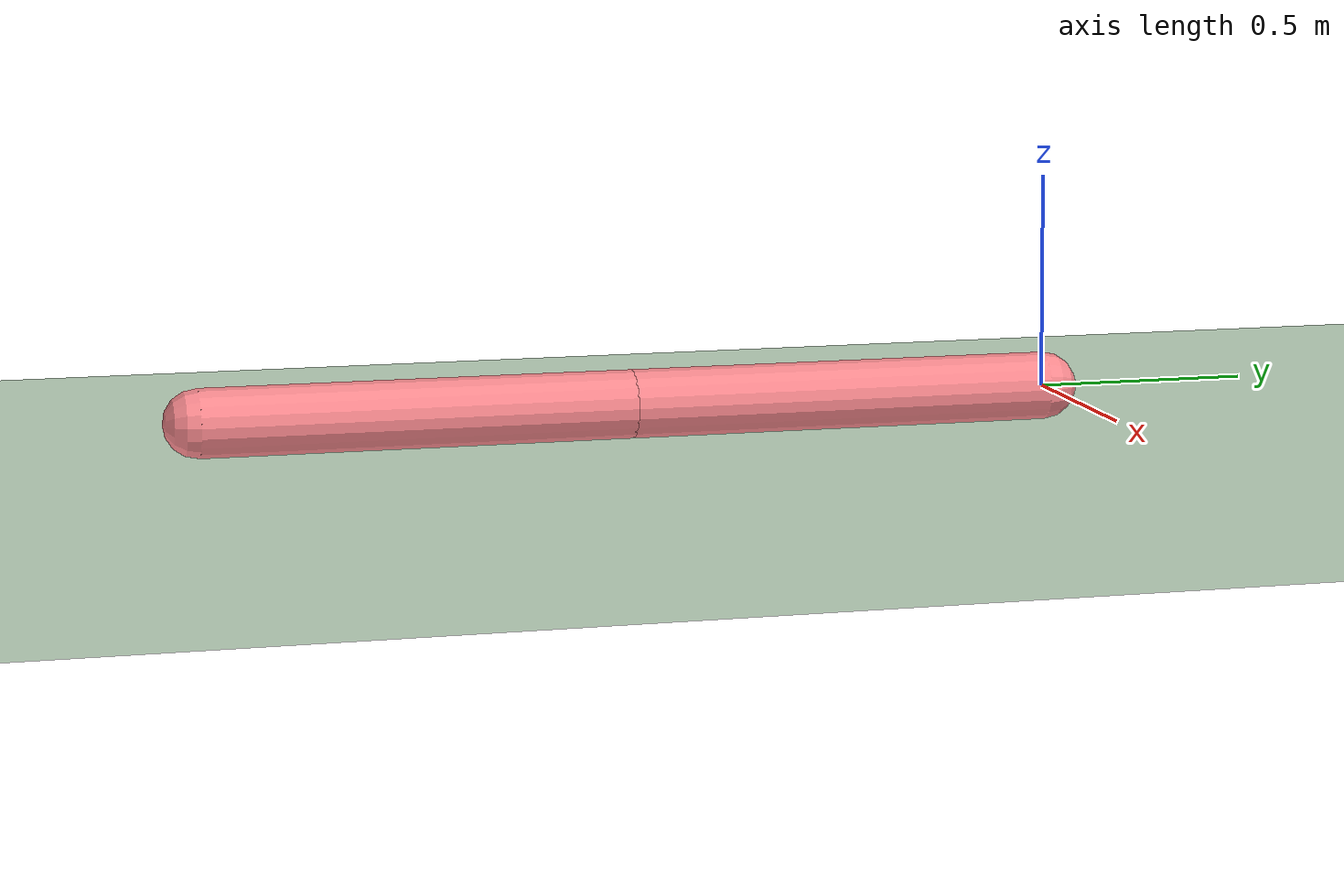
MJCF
<mujoco model="swimmer">
  <compiler angle="degree" coordinate="global" inertiafromgeom="true"/>
  <option collision="predefined" density="4000" integrator="RK4" timestep="0.01" viscosity="0.1"/>
  <default>
    <geom conaffinity="1" condim="1" contype="1" margin="0.001" rgba=".98 .54 .56 1."/>
    <joint armature="0.1"/>
  </default>
  <visual>
    <headlight ambient=".1 .1 .1" diffuse=".6 .6 .6" specular="0.3 0.3 0.3"/>
    <map znear=".01"/>
    <quality shadowsize="16384"/>
  </visual>
  <worldbody>
    <light cutoff="100" diffuse="1 1 1" dir="-1 0 -1.3" directional="true" exponent="1" pos="1 0 1.3" specular=".1 .1 .1" castshadow="true"/>
    <geom conaffinity="1" condim="3" name="floor" pos="0 0 -0.1" rgba="0.8 0.9 0.8 1" size="40 40 0.1" type="plane" material="grid_new"/>
    <body name="0" pos="0 0 0">
      <camera name="track" mode="trackcom" pos="0 -3 3" xyaxes="1 0 0 0 1 1"/>
      <joint axis="1 0 0" name="slider1" pos="0 0 0" type="slide"/>
      <joint axis="0 1 0" name="slider2" pos="0 0 0" type="slide"/>
      <joint axis="0 0 1" name="0_joint" pos="0 0 0" type="hinge"/>
      <geom density="1000" fromto="0 0 0 0 -1 0" size="0.08" type="capsule"/>
      <body name="1" pos="0 -1 0">
        <joint axis="0 0 1" limited="true" name="1_joint" pos="0 -1 0" range="-100 100" type="hinge"/>
        <geom density="1000" fromto="0 -1 0 0 -2 0" size="0.08" type="capsule"/>
      </body>
    </body>
  </worldbody>
  <actuator>
    <motor ctrllimited="true" ctrlrange="-1 1" gear="150" joint="1_joint" name="1_joint"/>
  </actuator>
  <asset>
    <texture type="skybox" builtin="gradient" rgb1=".4 .5 .6" rgb2="0 0 0" width="100" height="100"/>
    <texture builtin="flat" height="1278" mark="cross" markrgb="1 1 1" name="texgeom" random="0.01" rgb1="0.8 0.6 0.4" rgb2="0.8 0.6 0.4" type="cube" width="127"/>
    <texture builtin="checker" height="100" name="texplane" rgb1="0 0 0" rgb2="0.8 0.8 0.8" type="2d" width="100"/>
    <material name="MatPlane" reflectance="0.5" shininess="1" specular="1" texrepeat="60 60" texture="texplane"/>
    <material name="geom" texture="texgeom" texuniform="true"/>
    <texture name="grid_new" type="2d" builtin="checker" rgb1=".1 .3 .2" rgb2=".2 .4 .3" width="1000" height="1000" mark="none" markrgb=".8 .6 .4"/>
    <material name="grid_new" texture="grid_new" texrepeat="0.2 0.2" texuniform="true" reflectance=".2"/>
  </asset>
</mujoco>
